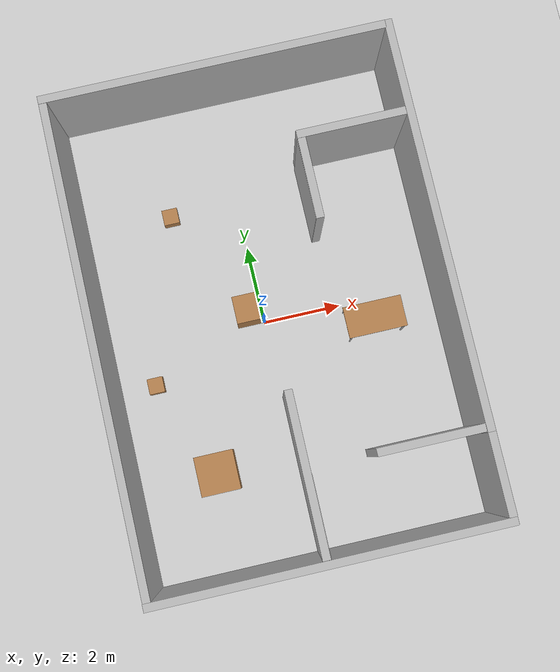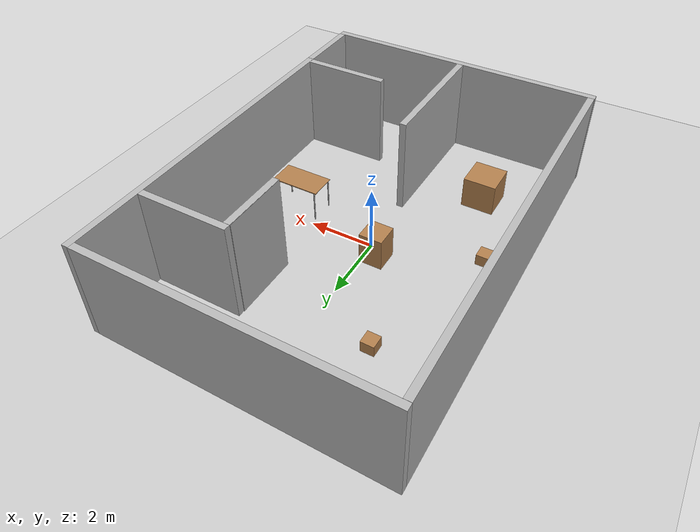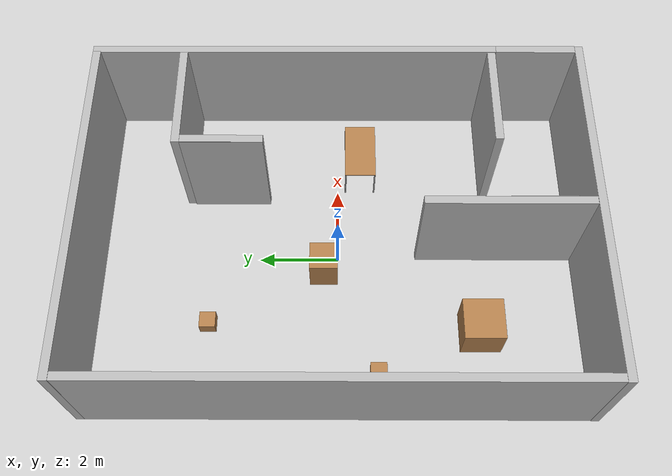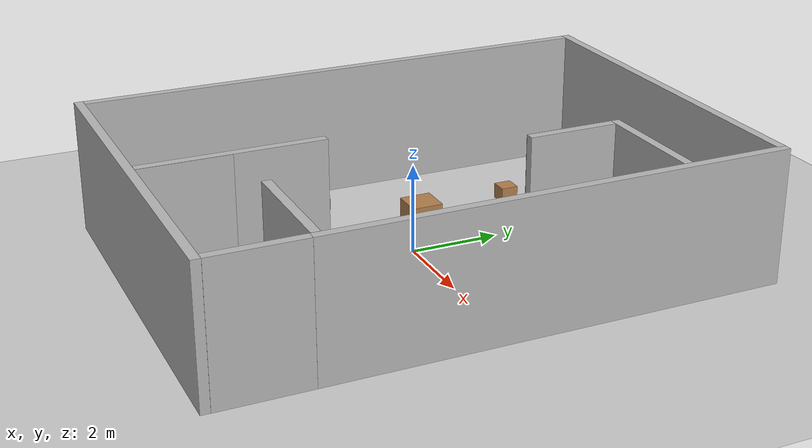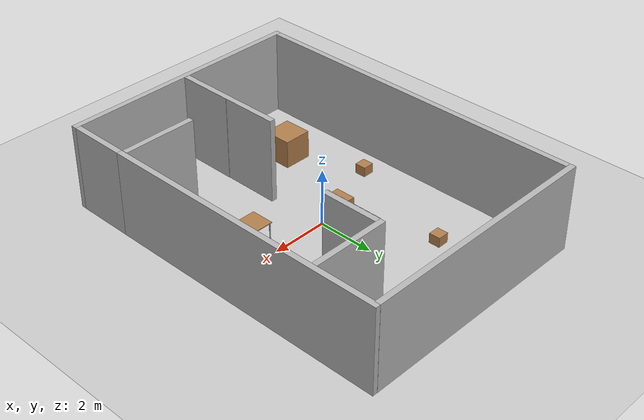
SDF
<sdf version="1.6">
 <world name="default">
  <light name="sun" type="directional">
   <pose>0 0 10 0 -0 0</pose>
   <diffuse>0.8 0.8 0.8 1</diffuse>
   <specular>0.2 0.2 0.2 1</specular>
   <attenuation>
    <range>1000</range>
    <constant>0.9</constant>
    <linear>0.01</linear>
    <quadratic>0.001</quadratic>
   </attenuation>
   <direction>-0.5 0.1 -0.9</direction>
  </light>
  <model name="ground_plane">
   <static>1</static>
   <link name="link">
    <collision name="collision">
     <geometry><plane><normal>0 0 1</normal><size>100 100</size></plane></geometry>
     <surface><friction><ode><mu>100</mu><mu2>50</mu2></ode></friction></surface>
    </collision>
    <visual name="visual">
     <cast_shadows>0</cast_shadows>
     <geometry><plane><normal>0 0 1</normal><size>100 100</size></plane></geometry>
     <material>
      <script><uri>file://media/materials/scripts/gazebo.material</uri><name>Gazebo/Grey</name></script>
     </material>
    </visual>
   </link>
  </model>
  <gravity>0 0 -9.8</gravity>
  <magnetic_field>6e-06 2.3e-05 -4.2e-05</magnetic_field>
  <atmosphere type="adiabatic"/>
  <physics name="default_physics" default="0" type="ode">
   <max_step_size>0.001</max_step_size>
   <real_time_factor>1</real_time_factor>
   <real_time_update_rate>1000</real_time_update_rate>
  </physics>
  <scene><ambient>0.4 0.4 0.4 1</ambient><background>0.7 0.7 0.7 1</background><shadows>1</shadows></scene>
  <spherical_coordinates>
   <surface_model>EARTH_WGS84</surface_model>
   <latitude_deg>0</latitude_deg>
   <longitude_deg>0</longitude_deg>
   <elevation>0</elevation>
   <heading_deg>0</heading_deg>
  </spherical_coordinates>
  <model name="wall3">
   <static>1</static>
   <link name="chassis">
    <pose>0 0 1.5 0 -0 0</pose>
    <collision name="collision"><geometry><box><size>8.6 0.2 3</size></box></geometry></collision>
    <visual name="visual">
     <geometry><mesh><uri>model://wall3/meshes/simple_box.dae</uri><scale>8.6 0.2 3</scale></mesh></geometry>
     <material>
      <script>
       <uri>model://wall3/materials/scripts</uri>
       <uri>model://wall3/materials/textures</uri>
       <name>wall3/Diffuse</name>
      </script>
     </material>
    </visual>
   </link>
   <pose>0.122857 6.10079 0 0 -0 0</pose>
  </model>
  <model name="wall2">
   <static>1</static>
   <link name="chassis">
    <pose>0 0 1.5 0 -0 0</pose>
    <collision name="collision"><geometry><box><size>12 0.2 3</size></box></geometry></collision>
    <visual name="visual">
     <geometry><mesh><uri>model://wall2/meshes/simple_box.dae</uri><scale>12 0.2 3</scale></mesh></geometry>
     <material>
      <script>
       <uri>model://wall2/materials/scripts</uri>
       <uri>model://wall2/materials/textures</uri>
       <name>wall2/Diffuse</name>
      </script>
     </material>
    </visual>
   </link>
   <pose>-4.08883 -0.002112 0 0 -0 1.56859</pose>
  </model>
  <model name="wall5">
   <static>1</static>
   <link name="chassis">
    <pose>0 0 1.5 0 -0 0</pose>
    <collision name="collision"><geometry><box><size>4 0.2 3</size></box></geometry></collision>
    <visual name="visual">
     <geometry><mesh><uri>model://wall5/meshes/simple_box.dae</uri><scale>4 0.2 3</scale></mesh></geometry>
     <material>
      <script>
       <uri>model://wall5/materials/scripts</uri>
       <uri>model://wall5/materials/textures</uri>
       <name>wall5/Diffuse</name>
      </script>
     </material>
    </visual>
   </link>
   <pose>0.114501 -3.99919 -0 0 0 -1.57366</pose>
  </model>
  <model name="wall4">
   <static>1</static>
   <link name="chassis">
    <pose>0 0 1.5 0 -0 0</pose>
    <collision name="collision"><geometry><box><size>10.2 0.2 3</size></box></geometry></collision>
    <visual name="visual">
     <geometry><mesh><uri>model://wall4/meshes/simple_box.dae</uri><scale>10.2 0.2 3</scale></mesh></geometry>
     <material>
      <script>
       <uri>model://wall4/materials/scripts</uri>
       <uri>model://wall4/materials/textures</uri>
       <name>wall4/Diffuse</name>
      </script>
     </material>
    </visual>
   </link>
   <pose>4.49599 1.09768 0 0 0 -1.57015</pose>
  </model>
  <model name="wall9">
   <static>1</static>
   <link name="chassis">
    <pose>0 0 1.5 0 -0 0</pose>
    <collision name="collision"><geometry><box><size>2 0.2 3</size></box></geometry></collision>
    <visual name="visual">
     <geometry><mesh><uri>model://wall9/meshes/simple_box.dae</uri><scale>2 0.2 3</scale></mesh></geometry>
     <material>
      <script>
       <uri>model://wall9/materials/scripts</uri>
       <uri>model://wall9/materials/textures</uri>
       <name>wall9/Diffuse</name>
      </script>
     </material>
    </visual>
   </link>
   <pose>4.49798 -5.00246 0 0 0 -1.57149</pose>
  </model>
  <model name="wall1">
   <static>1</static>
   <link name="chassis">
    <pose>0 0 1.5 0 -0 0</pose>
    <collision name="collision"><geometry><box><size>8.8 0.2 3</size></box></geometry></collision>
    <visual name="visual">
     <geometry><mesh><uri>model://wall1/meshes/simple_box.dae</uri><scale>8.8 0.2 3</scale></mesh></geometry>
     <material>
      <script>
       <uri>model://wall1/materials/scripts</uri>
       <uri>model://wall1/materials/textures</uri>
       <name>wall1/Diffuse</name>
      </script>
     </material>
    </visual>
   </link>
   <pose>0.191878 -6.10271 0 0 -0 0</pose>
  </model>
  <model name="wall6">
   <static>1</static>
   <link name="chassis">
    <pose>0 0 1.5 0 -0 0</pose>
    <collision name="collision"><geometry><box><size>2.7 0.2 3</size></box></geometry></collision>
    <visual name="visual">
     <geometry><mesh><uri>model://wall6/meshes/simple_box.dae</uri><scale>2.7 0.2 3</scale></mesh></geometry>
     <material>
      <script>
       <uri>model://wall6/materials/scripts</uri>
       <uri>model://wall6/materials/textures</uri>
       <name>wall6/Diffuse</name>
      </script>
     </material>
    </visual>
   </link>
   <pose>3.04391 3.89254 0 0 -0 0</pose>
  </model>
  <model name="wall8">
   <static>1</static>
   <link name="chassis">
    <pose>0 0 1.5 0 -0 0</pose>
    <collision name="collision"><geometry><box><size>2 0.2 3</size></box></geometry></collision>
    <visual name="visual">
     <geometry><mesh><uri>model://wall8/meshes/simple_box.dae</uri><scale>2 0.2 3</scale></mesh></geometry>
     <material>
      <script>
       <uri>model://wall8/materials/scripts</uri>
       <uri>model://wall8/materials/textures</uri>
       <name>wall8/Diffuse</name>
      </script>
     </material>
    </visual>
   </link>
   <pose>1.791 2.79086 0 0 -0 1.56902</pose>
  </model>
  <model name="wall7">
   <static>1</static>
   <link name="chassis">
    <pose>0 0 1.5 0 -0 0</pose>
    <collision name="collision"><geometry><box><size>2.6 0.2 3</size></box></geometry></collision>
    <visual name="visual">
     <geometry><mesh><uri>model://wall7/meshes/simple_box.dae</uri><scale>2.6 0.2 3</scale></mesh></geometry>
     <material>
      <script>
       <uri>model://wall7/materials/scripts</uri>
       <uri>model://wall7/materials/textures</uri>
       <name>wall7/Diffuse</name>
      </script>
     </material>
    </visual>
   </link>
   <pose>3.09377 -3.87923 0 0 -0 0</pose>
  </model>
  <model name="wall10">
   <static>1</static>
   <link name="chassis">
    <pose>0 0 1.5 0 -0 0</pose>
    <collision name="collision"><geometry><box><size>2 0.01 3</size></box></geometry></collision>
    <visual name="visual">
     <geometry><mesh><uri>model://wall10/meshes/simple_box.dae</uri><scale>2 0.01 3</scale></mesh></geometry>
     <material>
      <script>
       <uri>model://wall10/materials/scripts</uri>
       <uri>model://wall10/materials/textures</uri>
       <name>wall10/Diffuse</name>
      </script>
     </material>
    </visual>
   </link>
   <pose>1.6817 2.79247 0 0 -0 1.57251</pose>
  </model>
  <model name="wall10_0">
   <static>1</static>
   <link name="chassis">
    <pose>0 0 1.5 0 -0 0</pose>
    <collision name="collision"><geometry><box><size>2 0.01 3</size></box></geometry></collision>
    <visual name="visual">
     <geometry><mesh><uri>model://wall10/meshes/simple_box.dae</uri><scale>2 0.01 3</scale></mesh></geometry>
     <material>
      <script>
       <uri>model://wall10/materials/scripts</uri>
       <uri>model://wall10/materials/textures</uri>
       <name>wall10/Diffuse</name>
      </script>
     </material>
    </visual>
   </link>
   <pose>0.215582 -5.01168 0 0 0 -1.57416</pose>
  </model>
  <model name="wood_cube">
   <link name="link">
    <pose>0 0 0.5 0 -0 0</pose>
    <inertial>
     <mass>0.5167</mass>
     <inertia>
      <ixx>0.000861167</ixx>
      <ixy>0</ixy>
      <ixz>0</ixz>
      <iyy>0.000861167</iyy>
      <iyz>0</iyz>
      <izz>0.000861167</izz>
     </inertia>
    </inertial>
    <collision name="collision">
     <geometry><box><size>1 1 1</size></box></geometry>
     <surface>
      <contact>
       <poissons_ratio>0.347</poissons_ratio>
       <elastic_modulus>8.8e+09</elastic_modulus>
       <ode><kp>100000</kp><kd>100</kd><max_vel>100</max_vel><min_depth>0.001</min_depth></ode>
      </contact>
      <friction>
       <torsional>
        <coefficient>1</coefficient>
        <use_patch_radius>0</use_patch_radius>
        <surface_radius>0.01</surface_radius>
       </torsional>
      </friction>
     </surface>
    </collision>
    <visual name="visual">
     <geometry><box><size>1 1 1</size></box></geometry>
     <material>
      <script><uri>file://media/materials/scripts/gazebo.material</uri><name>Gazebo/Wood</name></script>
     </material>
    </visual>
   </link>
   <pose>-2.00156 -3.51566 -0.000516 0.001018 2e-06 0</pose>
  </model>
  <model name="wood_cube_small">
   <link name="link">
    <pose>0 0 0.175 0 -0 0</pose>
    <inertial>
     <mass>0.5167</mass>
     <inertia>
      <ixx>0.000861167</ixx>
      <ixy>0</ixy>
      <ixz>0</ixz>
      <iyy>0.000861167</iyy>
      <iyz>0</iyz>
      <izz>0.000861167</izz>
     </inertia>
    </inertial>
    <collision name="collision">
     <geometry><box><size>0.4 0.4 0.35</size></box></geometry>
     <surface>
      <contact>
       <poissons_ratio>0.347</poissons_ratio>
       <elastic_modulus>8.8e+09</elastic_modulus>
       <ode><kp>100000</kp><kd>100</kd><max_vel>100</max_vel><min_depth>0.001</min_depth></ode>
      </contact>
      <friction>
       <torsional>
        <coefficient>1</coefficient>
        <use_patch_radius>0</use_patch_radius>
        <surface_radius>0.01</surface_radius>
       </torsional>
      </friction>
     </surface>
    </collision>
    <visual name="visual">
     <geometry><box><size>0.4 0.4 0.35</size></box></geometry>
     <material>
      <script><uri>file://media/materials/scripts/gazebo.material</uri><name>Gazebo/Wood</name></script>
     </material>
    </visual>
   </link>
   <pose>-1.77646 3.21921 -0.001013 -3e-06 0 0</pose>
  </model>
  <model name="wood_cube_small_0">
   <link name="link">
    <pose>0 0 0.175 0 -0 0</pose>
    <inertial>
     <mass>0.5167</mass>
     <inertia>
      <ixx>0.000861167</ixx>
      <ixy>0</ixy>
      <ixz>0</ixz>
      <iyy>0.000861167</iyy>
      <iyz>0</iyz>
      <izz>0.000861167</izz>
     </inertia>
    </inertial>
    <collision name="collision">
     <geometry><box><size>0.4 0.4 0.35</size></box></geometry>
     <surface>
      <contact>
       <poissons_ratio>0.347</poissons_ratio>
       <elastic_modulus>8.8e+09</elastic_modulus>
       <ode><kp>100000</kp><kd>100</kd><max_vel>100</max_vel><min_depth>0.001</min_depth></ode>
      </contact>
      <friction>
       <torsional>
        <coefficient>1</coefficient>
        <use_patch_radius>0</use_patch_radius>
        <surface_radius>0.01</surface_radius>
       </torsional>
      </friction>
     </surface>
    </collision>
    <visual name="visual">
     <geometry><box><size>0.4 0.4 0.35</size></box></geometry>
     <material>
      <script><uri>file://media/materials/scripts/gazebo.material</uri><name>Gazebo/Wood</name></script>
     </material>
    </visual>
   </link>
   <pose>-3.07733 -0.999309 -0.001013 -3e-06 -0 0</pose>
  </model>
  <model name="table">
   <static>1</static>
   <link name="link">
    <collision name="surface">
     <pose>0 0 1 0 -0 0</pose>
     <geometry><box><size>1.5 0.8 0.03</size></box></geometry>
     <surface><friction><ode><mu>0.6</mu><mu2>0.6</mu2></ode></friction></surface>
    </collision>
    <visual name="visual1">
     <pose>0 0 1 0 -0 0</pose>
     <geometry><box><size>1.5 0.8 0.03</size></box></geometry>
     <material>
      <script><uri>file://media/materials/scripts/gazebo.material</uri><name>Gazebo/Wood</name></script>
     </material>
    </visual>
    <collision name="front_left_leg">
     <pose>0.68 0.38 0.5 0 -0 0</pose>
     <geometry><cylinder><radius>0.02</radius><length>1</length></cylinder></geometry>
    </collision>
    <visual name="front_left_leg">
     <pose>0.68 0.38 0.5 0 -0 0</pose>
     <geometry><cylinder><radius>0.02</radius><length>1</length></cylinder></geometry>
     <material>
      <script><uri>file://media/materials/scripts/gazebo.material</uri><name>Gazebo/Grey</name></script>
     </material>
    </visual>
    <collision name="front_right_leg">
     <pose>0.68 -0.38 0.5 0 -0 0</pose>
     <geometry><cylinder><radius>0.02</radius><length>1</length></cylinder></geometry>
    </collision>
    <visual name="front_right_leg">
     <pose>0.68 -0.38 0.5 0 -0 0</pose>
     <geometry><cylinder><radius>0.02</radius><length>1</length></cylinder></geometry>
     <material>
      <script><uri>file://media/materials/scripts/gazebo.material</uri><name>Gazebo/Grey</name></script>
     </material>
    </visual>
    <collision name="back_right_leg">
     <pose>-0.68 -0.38 0.5 0 -0 0</pose>
     <geometry><cylinder><radius>0.02</radius><length>1</length></cylinder></geometry>
    </collision>
    <visual name="back_right_leg">
     <pose>-0.68 -0.38 0.5 0 -0 0</pose>
     <geometry><cylinder><radius>0.02</radius><length>1</length></cylinder></geometry>
     <material>
      <script><uri>file://media/materials/scripts/gazebo.material</uri><name>Gazebo/Grey</name></script>
     </material>
    </visual>
    <collision name="back_left_leg">
     <pose>-0.68 0.38 0.5 0 -0 0</pose>
     <geometry><cylinder><radius>0.02</radius><length>1</length></cylinder></geometry>
    </collision>
    <visual name="back_left_leg">
     <pose>-0.68 0.38 0.5 0 -0 0</pose>
     <geometry><cylinder><radius>0.02</radius><length>1</length></cylinder></geometry>
     <material>
      <script><uri>file://media/materials/scripts/gazebo.material</uri><name>Gazebo/Grey</name></script>
     </material>
    </visual>
   </link>
   <pose>2.72771 -0.590235 0 0 -0 0</pose>
  </model>
  <model name="wood_cube_2">
   <link name="link">
    <pose>0 0 0.5 0 -0 0</pose>
    <inertial>
     <mass>0.5167</mass>
     <inertia>
      <ixx>0.000861167</ixx>
      <ixy>0</ixy>
      <ixz>0</ixz>
      <iyy>0.000861167</iyy>
      <iyz>0</iyz>
      <izz>0.000861167</izz>
     </inertia>
    </inertial>
    <collision name="collision">
     <geometry><box><size>0.7 0.7 1</size></box></geometry>
     <surface>
      <contact>
       <poissons_ratio>0.347</poissons_ratio>
       <elastic_modulus>8.8e+09</elastic_modulus>
       <ode><kp>100000</kp><kd>100</kd><max_vel>100</max_vel><min_depth>0.001</min_depth></ode>
      </contact>
      <friction>
       <torsional>
        <coefficient>1</coefficient>
        <use_patch_radius>0</use_patch_radius>
        <surface_radius>0.01</surface_radius>
       </torsional>
      </friction>
     </surface>
    </collision>
    <visual name="visual">
     <geometry><box><size>0.7 0.7 1</size></box></geometry>
     <material>
      <script><uri>file://media/materials/scripts/gazebo.material</uri><name>Gazebo/Wood</name></script>
     </material>
    </visual>
   </link>
   <pose>-0.343039 0.35051 -0.001011 1.6e-05 -0 0</pose>
  </model>
  <audio><device>default</device></audio>
  <light name="user_point_light_0" type="point">
   <pose>-0.586485 -0.34484 1 0 -0 0</pose>
   <diffuse>0.5 0.5 0.5 1</diffuse>
   <specular>0.1 0.1 0.1 1</specular>
   <attenuation>
    <range>20</range>
    <constant>0.5</constant>
    <linear>0.01</linear>
    <quadratic>0.001</quadratic>
   </attenuation>
   <cast_shadows>0</cast_shadows>
   <direction>0 0 -1</direction>
  </light>
 </world>
</sdf>
